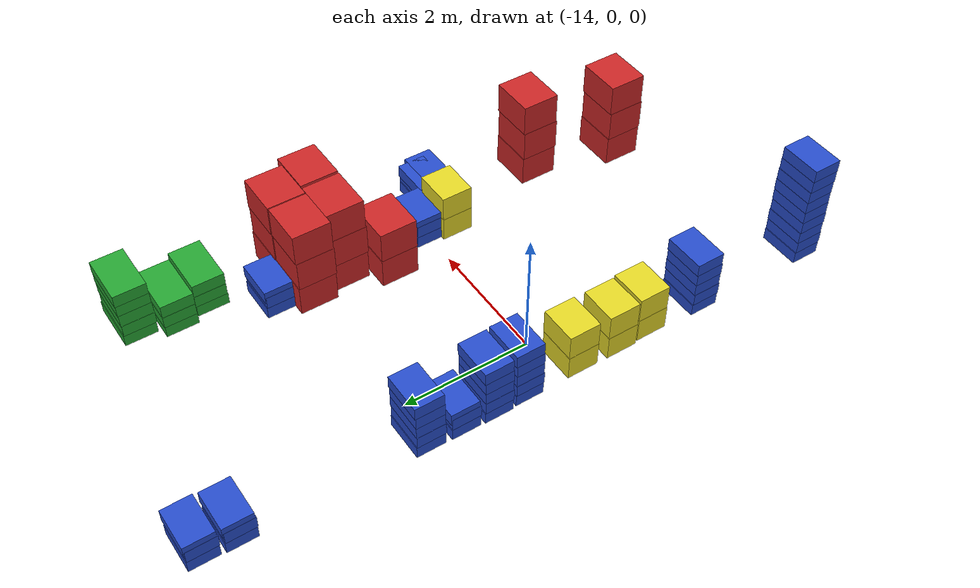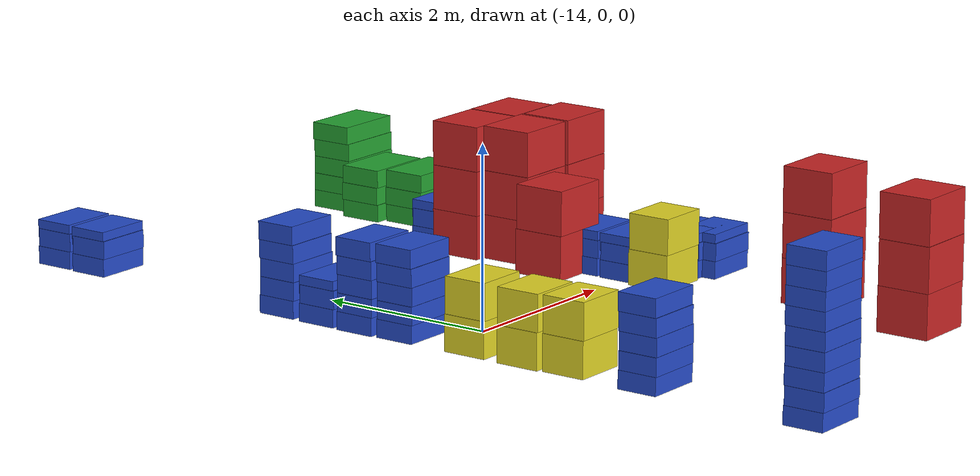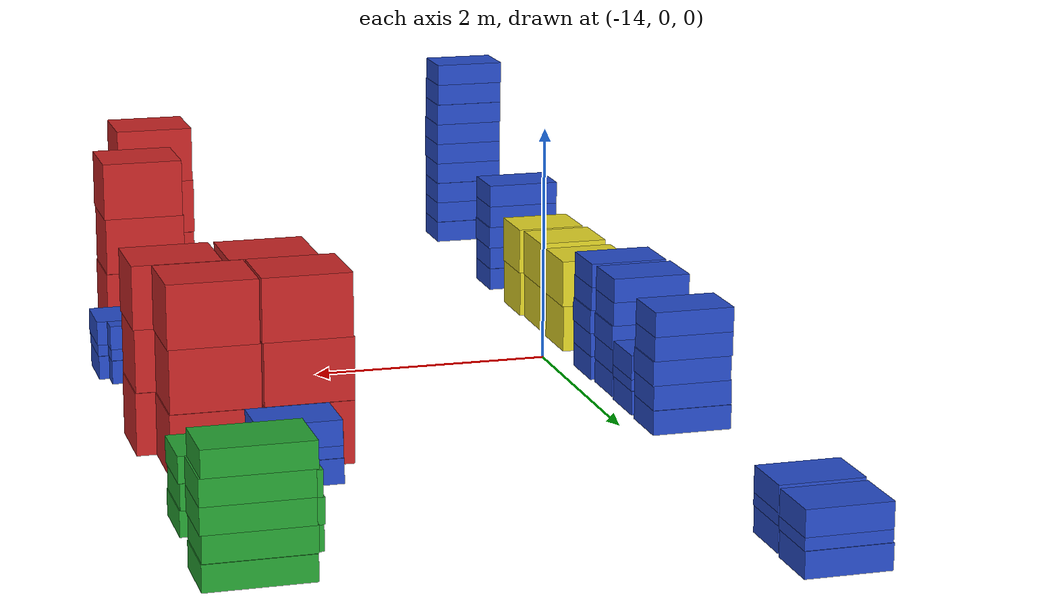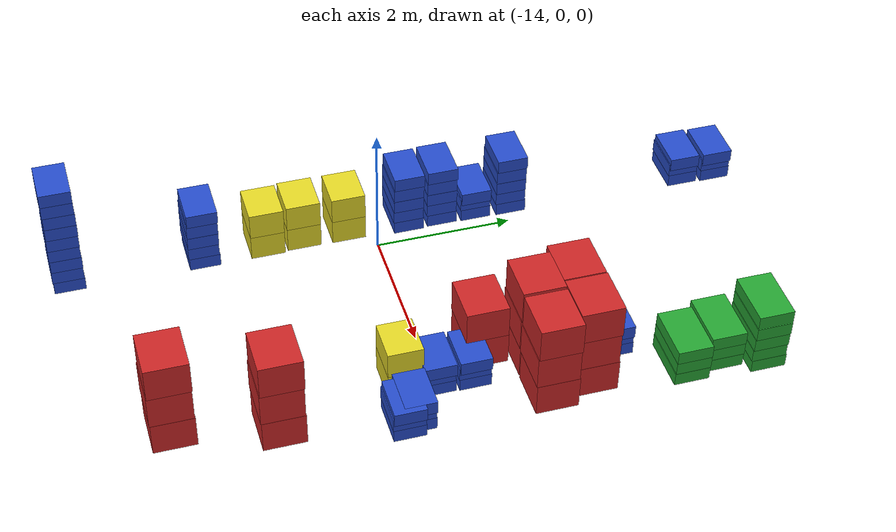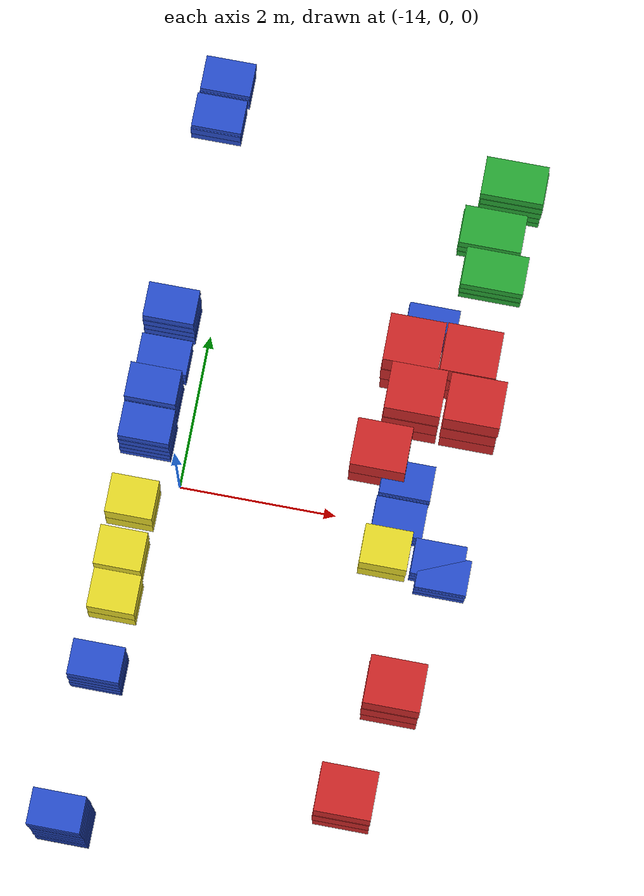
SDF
<sdf version="1.6">
 <world name="default">
  <include><uri>model://sun</uri></include>
  <model name="baggage_B_x9">
   <model name="baggage_B_0">
    <static>1</static>
    <link name="link">
     <collision name="collision"><geometry><box><size>0.65 0.45 0.2</size></box></geometry></collision>
     <visual name="visual">
      <geometry><box><size>0.65 0.45 0.2</size></box></geometry>
      <material>
       <script><uri>file://media/materials/scripts/gazebo.material</uri><name>Gazebo/Blue</name></script>
      </material>
     </visual>
    </link>
    <pose>0 0 0.1 0 -0 0</pose>
   </model>
   <model name="baggage_B_1">
    <static>1</static>
    <link name="link">
     <collision name="collision"><geometry><box><size>0.65 0.45 0.2</size></box></geometry></collision>
     <visual name="visual">
      <geometry><box><size>0.65 0.45 0.2</size></box></geometry>
      <material>
       <script><uri>file://media/materials/scripts/gazebo.material</uri><name>Gazebo/Blue</name></script>
      </material>
     </visual>
    </link>
    <pose>0.001 -0.0095 0.3 0 -0 0</pose>
   </model>
   <model name="baggage_B_2">
    <static>1</static>
    <link name="link">
     <collision name="collision"><geometry><box><size>0.65 0.45 0.2</size></box></geometry></collision>
     <visual name="visual">
      <geometry><box><size>0.65 0.45 0.2</size></box></geometry>
      <material>
       <script><uri>file://media/materials/scripts/gazebo.material</uri><name>Gazebo/Blue</name></script>
      </material>
     </visual>
    </link>
    <pose>0.0028 -0.0029 0.5 0 -0 0</pose>
   </model>
   <model name="baggage_B_3">
    <static>1</static>
    <link name="link">
     <collision name="collision"><geometry><box><size>0.65 0.45 0.2</size></box></geometry></collision>
     <visual name="visual">
      <geometry><box><size>0.65 0.45 0.2</size></box></geometry>
      <material>
       <script><uri>file://media/materials/scripts/gazebo.material</uri><name>Gazebo/Blue</name></script>
      </material>
     </visual>
    </link>
    <pose>-0.0004 -0.0089 0.7 0 -0 0</pose>
   </model>
   <model name="baggage_B_4">
    <static>1</static>
    <link name="link">
     <collision name="collision"><geometry><box><size>0.65 0.45 0.2</size></box></geometry></collision>
     <visual name="visual">
      <geometry><box><size>0.65 0.45 0.2</size></box></geometry>
      <material>
       <script><uri>file://media/materials/scripts/gazebo.material</uri><name>Gazebo/Blue</name></script>
      </material>
     </visual>
    </link>
    <pose>0.0034 -0.0062 0.9 0 -0 0</pose>
   </model>
   <model name="baggage_B_5">
    <static>1</static>
    <link name="link">
     <collision name="collision"><geometry><box><size>0.65 0.45 0.2</size></box></geometry></collision>
     <visual name="visual">
      <geometry><box><size>0.65 0.45 0.2</size></box></geometry>
      <material>
       <script><uri>file://media/materials/scripts/gazebo.material</uri><name>Gazebo/Blue</name></script>
      </material>
     </visual>
    </link>
    <pose>0.0037 -0.0012 1.1 0 -0 0</pose>
   </model>
   <model name="baggage_B_6">
    <static>1</static>
    <link name="link">
     <collision name="collision"><geometry><box><size>0.65 0.45 0.2</size></box></geometry></collision>
     <visual name="visual">
      <geometry><box><size>0.65 0.45 0.2</size></box></geometry>
      <material>
       <script><uri>file://media/materials/scripts/gazebo.material</uri><name>Gazebo/Blue</name></script>
      </material>
     </visual>
    </link>
    <pose>0 -0.0018 1.3 0 -0 0</pose>
   </model>
   <model name="baggage_B_7">
    <static>1</static>
    <link name="link">
     <collision name="collision"><geometry><box><size>0.65 0.45 0.2</size></box></geometry></collision>
     <visual name="visual">
      <geometry><box><size>0.65 0.45 0.2</size></box></geometry>
      <material>
       <script><uri>file://media/materials/scripts/gazebo.material</uri><name>Gazebo/Blue</name></script>
      </material>
     </visual>
    </link>
    <pose>-0.0036 -0.0074 1.5 0 -0 0</pose>
   </model>
   <model name="baggage_B_8">
    <static>1</static>
    <link name="link">
     <collision name="collision"><geometry><box><size>0.65 0.45 0.2</size></box></geometry></collision>
     <visual name="visual">
      <geometry><box><size>0.65 0.45 0.2</size></box></geometry>
      <material>
       <script><uri>file://media/materials/scripts/gazebo.material</uri><name>Gazebo/Blue</name></script>
      </material>
     </visual>
    </link>
    <pose>-0.0068 -0.0081 1.7 0 -0 0</pose>
   </model>
   <pose>-14.554 -4.46821 0 0 -0 0</pose>
  </model>
  <model name="baggage_C_x2_2">
   <model name="baggage_C_0">
    <static>1</static>
    <link name="link">
     <collision name="collision"><geometry><box><size>0.6 0.5 0.4</size></box></geometry></collision>
     <visual name="visual">
      <geometry><box><size>0.6 0.5 0.4</size></box></geometry>
      <material>
       <script><uri>file://media/materials/scripts/gazebo.material</uri><name>Gazebo/Yellow</name></script>
      </material>
     </visual>
    </link>
    <pose>0 0 0.2 0 -0 0</pose>
   </model>
   <model name="baggage_C_1">
    <static>1</static>
    <link name="link">
     <collision name="collision"><geometry><box><size>0.6 0.5 0.4</size></box></geometry></collision>
     <visual name="visual">
      <geometry><box><size>0.6 0.5 0.4</size></box></geometry>
      <material>
       <script><uri>file://media/materials/scripts/gazebo.material</uri><name>Gazebo/Yellow</name></script>
      </material>
     </visual>
    </link>
    <pose>0.0093 -0.002 0.6 0 -0 0</pose>
   </model>
   <pose>-14.5334 -1.04358 0 0 -0 0</pose>
  </model>
  <model name="baggage_C_x2_4">
   <model name="baggage_C_0">
    <static>1</static>
    <link name="link">
     <collision name="collision"><geometry><box><size>0.6 0.5 0.4</size></box></geometry></collision>
     <visual name="visual">
      <geometry><box><size>0.6 0.5 0.4</size></box></geometry>
      <material>
       <script><uri>file://media/materials/scripts/gazebo.material</uri><name>Gazebo/Yellow</name></script>
      </material>
     </visual>
    </link>
    <pose>0 0 0.2 0 -0 0</pose>
   </model>
   <model name="baggage_C_1">
    <static>1</static>
    <link name="link">
     <collision name="collision"><geometry><box><size>0.6 0.5 0.4</size></box></geometry></collision>
     <visual name="visual">
      <geometry><box><size>0.6 0.5 0.4</size></box></geometry>
      <material>
       <script><uri>file://media/materials/scripts/gazebo.material</uri><name>Gazebo/Yellow</name></script>
      </material>
     </visual>
    </link>
    <pose>0.0093 -0.002 0.6 0 -0 0</pose>
   </model>
   <pose>-14.5232 -0.375322 0 0 -0 0</pose>
  </model>
  <model name="baggage_B_x5_2">
   <model name="baggage_B_0">
    <static>1</static>
    <link name="link">
     <collision name="collision"><geometry><box><size>0.65 0.45 0.2</size></box></geometry></collision>
     <visual name="visual">
      <geometry><box><size>0.65 0.45 0.2</size></box></geometry>
      <material>
       <script><uri>file://media/materials/scripts/gazebo.material</uri><name>Gazebo/Blue</name></script>
      </material>
     </visual>
    </link>
    <pose>0 0 0.1 0 -0 0</pose>
   </model>
   <model name="baggage_B_1">
    <static>1</static>
    <link name="link">
     <collision name="collision"><geometry><box><size>0.65 0.45 0.2</size></box></geometry></collision>
     <visual name="visual">
      <geometry><box><size>0.65 0.45 0.2</size></box></geometry>
      <material>
       <script><uri>file://media/materials/scripts/gazebo.material</uri><name>Gazebo/Blue</name></script>
      </material>
     </visual>
    </link>
    <pose>-0.0014 -0.0091 0.3 0 -0 0</pose>
   </model>
   <model name="baggage_B_2">
    <static>1</static>
    <link name="link">
     <collision name="collision"><geometry><box><size>0.65 0.45 0.2</size></box></geometry></collision>
     <visual name="visual">
      <geometry><box><size>0.65 0.45 0.2</size></box></geometry>
      <material>
       <script><uri>file://media/materials/scripts/gazebo.material</uri><name>Gazebo/Blue</name></script>
      </material>
     </visual>
    </link>
    <pose>0.0076 -0.0066 0.5 0 -0 0</pose>
   </model>
   <model name="baggage_B_3">
    <static>1</static>
    <link name="link">
     <collision name="collision"><geometry><box><size>0.65 0.45 0.2</size></box></geometry></collision>
     <visual name="visual">
      <geometry><box><size>0.65 0.45 0.2</size></box></geometry>
      <material>
       <script><uri>file://media/materials/scripts/gazebo.material</uri><name>Gazebo/Blue</name></script>
      </material>
     </visual>
    </link>
    <pose>0 -0.0032 0.7 0 -0 0</pose>
   </model>
   <model name="baggage_B_4">
    <static>1</static>
    <link name="link">
     <collision name="collision"><geometry><box><size>0.65 0.45 0.2</size></box></geometry></collision>
     <visual name="visual">
      <geometry><box><size>0.65 0.45 0.2</size></box></geometry>
      <material>
       <script><uri>file://media/materials/scripts/gazebo.material</uri><name>Gazebo/Blue</name></script>
      </material>
     </visual>
    </link>
    <pose>0.0023 0.0073 0.9 0 -0 0</pose>
   </model>
   <pose>-14.5046 0.525029 0 0 -0 0</pose>
  </model>
  <model name="baggage_B_x5_3">
   <model name="baggage_B_0">
    <static>1</static>
    <link name="link">
     <collision name="collision"><geometry><box><size>0.65 0.45 0.2</size></box></geometry></collision>
     <visual name="visual">
      <geometry><box><size>0.65 0.45 0.2</size></box></geometry>
      <material>
       <script><uri>file://media/materials/scripts/gazebo.material</uri><name>Gazebo/Blue</name></script>
      </material>
     </visual>
    </link>
    <pose>0 0 0.1 0 -0 0</pose>
   </model>
   <model name="baggage_B_1">
    <static>1</static>
    <link name="link">
     <collision name="collision"><geometry><box><size>0.65 0.45 0.2</size></box></geometry></collision>
     <visual name="visual">
      <geometry><box><size>0.65 0.45 0.2</size></box></geometry>
      <material>
       <script><uri>file://media/materials/scripts/gazebo.material</uri><name>Gazebo/Blue</name></script>
      </material>
     </visual>
    </link>
    <pose>-0.0014 -0.0091 0.3 0 -0 0</pose>
   </model>
   <model name="baggage_B_2">
    <static>1</static>
    <link name="link">
     <collision name="collision"><geometry><box><size>0.65 0.45 0.2</size></box></geometry></collision>
     <visual name="visual">
      <geometry><box><size>0.65 0.45 0.2</size></box></geometry>
      <material>
       <script><uri>file://media/materials/scripts/gazebo.material</uri><name>Gazebo/Blue</name></script>
      </material>
     </visual>
    </link>
    <pose>0.0076 -0.0066 0.5 0 -0 0</pose>
   </model>
   <model name="baggage_B_3">
    <static>1</static>
    <link name="link">
     <collision name="collision"><geometry><box><size>0.65 0.45 0.2</size></box></geometry></collision>
     <visual name="visual">
      <geometry><box><size>0.65 0.45 0.2</size></box></geometry>
      <material>
       <script><uri>file://media/materials/scripts/gazebo.material</uri><name>Gazebo/Blue</name></script>
      </material>
     </visual>
    </link>
    <pose>0 -0.0032 0.7 0 -0 0</pose>
   </model>
   <model name="baggage_B_4">
    <static>1</static>
    <link name="link">
     <collision name="collision"><geometry><box><size>0.65 0.45 0.2</size></box></geometry></collision>
     <visual name="visual">
      <geometry><box><size>0.65 0.45 0.2</size></box></geometry>
      <material>
       <script><uri>file://media/materials/scripts/gazebo.material</uri><name>Gazebo/Blue</name></script>
      </material>
     </visual>
    </link>
    <pose>0.0023 0.0073 0.9 0 -0 0</pose>
   </model>
   <pose>-14.5224 1.03384 0 0 -0 0</pose>
  </model>
  <model name="baggage_B_x3_2">
   <model name="baggage_B_0">
    <static>1</static>
    <link name="link">
     <collision name="collision"><geometry><box><size>0.65 0.45 0.2</size></box></geometry></collision>
     <visual name="visual">
      <geometry><box><size>0.65 0.45 0.2</size></box></geometry>
      <material>
       <script><uri>file://media/materials/scripts/gazebo.material</uri><name>Gazebo/Blue</name></script>
      </material>
     </visual>
    </link>
    <pose>0 0 0.1 0 -0 0</pose>
   </model>
   <model name="baggage_B_1">
    <static>1</static>
    <link name="link">
     <collision name="collision"><geometry><box><size>0.65 0.45 0.2</size></box></geometry></collision>
     <visual name="visual">
      <geometry><box><size>0.65 0.45 0.2</size></box></geometry>
      <material>
       <script><uri>file://media/materials/scripts/gazebo.material</uri><name>Gazebo/Blue</name></script>
      </material>
     </visual>
    </link>
    <pose>0.0028 -0.0086 0.3 0 -0 0</pose>
   </model>
   <model name="baggage_B_2">
    <static>1</static>
    <link name="link">
     <collision name="collision"><geometry><box><size>0.65 0.45 0.2</size></box></geometry></collision>
     <visual name="visual">
      <geometry><box><size>0.65 0.45 0.2</size></box></geometry>
      <material>
       <script><uri>file://media/materials/scripts/gazebo.material</uri><name>Gazebo/Blue</name></script>
      </material>
     </visual>
    </link>
    <pose>0.0092 0.006 0.4 0 -0 0</pose>
   </model>
   <pose>-14.5084 1.54815 0 0 -0 0</pose>
  </model>
  <model name="baggage_B_x5_4">
   <model name="baggage_B_0">
    <static>1</static>
    <link name="link">
     <collision name="collision"><geometry><box><size>0.65 0.45 0.2</size></box></geometry></collision>
     <visual name="visual">
      <geometry><box><size>0.65 0.45 0.2</size></box></geometry>
      <material>
       <script><uri>file://media/materials/scripts/gazebo.material</uri><name>Gazebo/Blue</name></script>
      </material>
     </visual>
    </link>
    <pose>0 0 0.1 0 -0 0</pose>
   </model>
   <model name="baggage_B_1">
    <static>1</static>
    <link name="link">
     <collision name="collision"><geometry><box><size>0.65 0.45 0.2</size></box></geometry></collision>
     <visual name="visual">
      <geometry><box><size>0.65 0.45 0.2</size></box></geometry>
      <material>
       <script><uri>file://media/materials/scripts/gazebo.material</uri><name>Gazebo/Blue</name></script>
      </material>
     </visual>
    </link>
    <pose>-0.0014 -0.0091 0.3 0 -0 0</pose>
   </model>
   <model name="baggage_B_2">
    <static>1</static>
    <link name="link">
     <collision name="collision"><geometry><box><size>0.65 0.45 0.2</size></box></geometry></collision>
     <visual name="visual">
      <geometry><box><size>0.65 0.45 0.2</size></box></geometry>
      <material>
       <script><uri>file://media/materials/scripts/gazebo.material</uri><name>Gazebo/Blue</name></script>
      </material>
     </visual>
    </link>
    <pose>0.0076 -0.0066 0.5 0 -0 0</pose>
   </model>
   <model name="baggage_B_3">
    <static>1</static>
    <link name="link">
     <collision name="collision"><geometry><box><size>0.65 0.45 0.2</size></box></geometry></collision>
     <visual name="visual">
      <geometry><box><size>0.65 0.45 0.2</size></box></geometry>
      <material>
       <script><uri>file://media/materials/scripts/gazebo.material</uri><name>Gazebo/Blue</name></script>
      </material>
     </visual>
    </link>
    <pose>0 -0.0032 0.7 0 -0 0</pose>
   </model>
   <model name="baggage_B_4">
    <static>1</static>
    <link name="link">
     <collision name="collision"><geometry><box><size>0.65 0.45 0.2</size></box></geometry></collision>
     <visual name="visual">
      <geometry><box><size>0.65 0.45 0.2</size></box></geometry>
      <material>
       <script><uri>file://media/materials/scripts/gazebo.material</uri><name>Gazebo/Blue</name></script>
      </material>
     </visual>
    </link>
    <pose>0.0023 0.0073 0.9 0 -0 0</pose>
   </model>
   <pose>-14.4977 2.09001 0 0 -0 0</pose>
  </model>
  <model name="baggage_B_x5_5">
   <model name="baggage_B_0">
    <static>1</static>
    <link name="link">
     <collision name="collision"><geometry><box><size>0.65 0.45 0.2</size></box></geometry></collision>
     <visual name="visual">
      <geometry><box><size>0.65 0.45 0.2</size></box></geometry>
      <material>
       <script><uri>file://media/materials/scripts/gazebo.material</uri><name>Gazebo/Blue</name></script>
      </material>
     </visual>
    </link>
    <pose>0 0 0.1 0 -0 0</pose>
   </model>
   <model name="baggage_B_1">
    <static>1</static>
    <link name="link">
     <collision name="collision"><geometry><box><size>0.65 0.45 0.2</size></box></geometry></collision>
     <visual name="visual">
      <geometry><box><size>0.65 0.45 0.2</size></box></geometry>
      <material>
       <script><uri>file://media/materials/scripts/gazebo.material</uri><name>Gazebo/Blue</name></script>
      </material>
     </visual>
    </link>
    <pose>-0.0014 -0.0091 0.3 0 -0 0</pose>
   </model>
   <model name="baggage_B_2">
    <static>1</static>
    <link name="link">
     <collision name="collision"><geometry><box><size>0.65 0.45 0.2</size></box></geometry></collision>
     <visual name="visual">
      <geometry><box><size>0.65 0.45 0.2</size></box></geometry>
      <material>
       <script><uri>file://media/materials/scripts/gazebo.material</uri><name>Gazebo/Blue</name></script>
      </material>
     </visual>
    </link>
    <pose>0.0076 -0.0066 0.5 0 -0 0</pose>
   </model>
   <model name="baggage_B_3">
    <static>1</static>
    <link name="link">
     <collision name="collision"><geometry><box><size>0.65 0.45 0.2</size></box></geometry></collision>
     <visual name="visual">
      <geometry><box><size>0.65 0.45 0.2</size></box></geometry>
      <material>
       <script><uri>file://media/materials/scripts/gazebo.material</uri><name>Gazebo/Blue</name></script>
      </material>
     </visual>
    </link>
    <pose>0 -0.0032 0.7 0 -0 0</pose>
   </model>
   <model name="baggage_B_4">
    <static>1</static>
    <link name="link">
     <collision name="collision"><geometry><box><size>0.65 0.45 0.2</size></box></geometry></collision>
     <visual name="visual">
      <geometry><box><size>0.65 0.45 0.2</size></box></geometry>
      <material>
       <script><uri>file://media/materials/scripts/gazebo.material</uri><name>Gazebo/Blue</name></script>
      </material>
     </visual>
    </link>
    <pose>0.0023 0.0073 0.9 0 -0 0</pose>
   </model>
   <pose>-14.5261 -2.51938 0 0 -0 0</pose>
  </model>
  <model name="baggage_C_x2_6">
   <model name="baggage_C_0">
    <static>1</static>
    <link name="link">
     <collision name="collision"><geometry><box><size>0.6 0.5 0.4</size></box></geometry></collision>
     <visual name="visual">
      <geometry><box><size>0.6 0.5 0.4</size></box></geometry>
      <material>
       <script><uri>file://media/materials/scripts/gazebo.material</uri><name>Gazebo/Yellow</name></script>
      </material>
     </visual>
    </link>
    <pose>0 0 0.2 0 -0 0</pose>
   </model>
   <model name="baggage_C_1">
    <static>1</static>
    <link name="link">
     <collision name="collision"><geometry><box><size>0.6 0.5 0.4</size></box></geometry></collision>
     <visual name="visual">
      <geometry><box><size>0.6 0.5 0.4</size></box></geometry>
      <material>
       <script><uri>file://media/materials/scripts/gazebo.material</uri><name>Gazebo/Yellow</name></script>
      </material>
     </visual>
    </link>
    <pose>0.0093 -0.002 0.6 0 -0 0</pose>
   </model>
   <pose>-14.5053 -1.58962 0 0 -0 0</pose>
  </model>
  <model name="baggage_B_x3_4">
   <model name="baggage_B_0">
    <static>1</static>
    <link name="link">
     <collision name="collision"><geometry><box><size>0.65 0.45 0.2</size></box></geometry></collision>
     <visual name="visual">
      <geometry><box><size>0.65 0.45 0.2</size></box></geometry>
      <material>
       <script><uri>file://media/materials/scripts/gazebo.material</uri><name>Gazebo/Blue</name></script>
      </material>
     </visual>
    </link>
    <pose>0 0 0.1 0 -0 0</pose>
   </model>
   <model name="baggage_B_1">
    <static>1</static>
    <link name="link">
     <collision name="collision"><geometry><box><size>0.65 0.45 0.2</size></box></geometry></collision>
     <visual name="visual">
      <geometry><box><size>0.65 0.45 0.2</size></box></geometry>
      <material>
       <script><uri>file://media/materials/scripts/gazebo.material</uri><name>Gazebo/Blue</name></script>
      </material>
     </visual>
    </link>
    <pose>0.0028 -0.0086 0.3 0 -0 0</pose>
   </model>
   <model name="baggage_B_2">
    <static>1</static>
    <link name="link">
     <collision name="collision"><geometry><box><size>0.65 0.45 0.2</size></box></geometry></collision>
     <visual name="visual">
      <geometry><box><size>0.65 0.45 0.2</size></box></geometry>
      <material>
       <script><uri>file://media/materials/scripts/gazebo.material</uri><name>Gazebo/Blue</name></script>
      </material>
     </visual>
    </link>
    <pose>0.0092 0.006 0.4 0 -0 0</pose>
   </model>
   <pose>-14.4313 4.80251 0 0 -0 0</pose>
  </model>
  <model name="baggage_B_x3_7">
   <model name="baggage_B_0">
    <static>1</static>
    <link name="link">
     <collision name="collision"><geometry><box><size>0.65 0.45 0.2</size></box></geometry></collision>
     <visual name="visual">
      <geometry><box><size>0.65 0.45 0.2</size></box></geometry>
      <material>
       <script><uri>file://media/materials/scripts/gazebo.material</uri><name>Gazebo/Blue</name></script>
      </material>
     </visual>
    </link>
    <pose>0 0 0.1 0 -0 0</pose>
   </model>
   <model name="baggage_B_1">
    <static>1</static>
    <link name="link">
     <collision name="collision"><geometry><box><size>0.65 0.45 0.2</size></box></geometry></collision>
     <visual name="visual">
      <geometry><box><size>0.65 0.45 0.2</size></box></geometry>
      <material>
       <script><uri>file://media/materials/scripts/gazebo.material</uri><name>Gazebo/Blue</name></script>
      </material>
     </visual>
    </link>
    <pose>0.0028 -0.0086 0.3 0 -0 0</pose>
   </model>
   <model name="baggage_B_2">
    <static>1</static>
    <link name="link">
     <collision name="collision"><geometry><box><size>0.65 0.45 0.2</size></box></geometry></collision>
     <visual name="visual">
      <geometry><box><size>0.65 0.45 0.2</size></box></geometry>
      <material>
       <script><uri>file://media/materials/scripts/gazebo.material</uri><name>Gazebo/Blue</name></script>
      </material>
     </visual>
    </link>
    <pose>0.0092 0.006 0.4 0 -0 0</pose>
   </model>
   <pose>-14.4126 5.3135 0 0 -0 0</pose>
  </model>
  <model name="baggage_A_x3_14">
   <model name="baggage_A_0">
    <static>1</static>
    <link name="link">
     <collision name="collision"><geometry><box><size>0.7 0.6 0.5</size></box></geometry></collision>
     <visual name="visual">
      <geometry><box><size>0.7 0.6 0.5</size></box></geometry>
      <material>
       <script><uri>file://media/materials/scripts/gazebo.material</uri><name>Gazebo/Red</name></script>
      </material>
     </visual>
    </link>
    <pose>0 0 0.25 0 -0 0</pose>
   </model>
   <model name="baggage_A_1">
    <static>1</static>
    <link name="link">
     <collision name="collision"><geometry><box><size>0.7 0.6 0.5</size></box></geometry></collision>
     <visual name="visual">
      <geometry><box><size>0.7 0.6 0.5</size></box></geometry>
      <material>
       <script><uri>file://media/materials/scripts/gazebo.material</uri><name>Gazebo/Red</name></script>
      </material>
     </visual>
    </link>
    <pose>-0.006 -0.0077 0.75 0 -0 0</pose>
   </model>
   <model name="baggage_A_2">
    <static>1</static>
    <link name="link">
     <collision name="collision"><geometry><box><size>0.7 0.6 0.5</size></box></geometry></collision>
     <visual name="visual">
      <geometry><box><size>0.7 0.6 0.5</size></box></geometry>
      <material>
       <script><uri>file://media/materials/scripts/gazebo.material</uri><name>Gazebo/Red</name></script>
      </material>
     </visual>
    </link>
    <pose>0.0045 0.0005 1.25 0 -0 0</pose>
   </model>
   <pose>-11.2173 -3.57429 0 0 -0 0</pose>
  </model>
  <model name="baggage_A_x3_17">
   <model name="baggage_A_0">
    <static>1</static>
    <link name="link">
     <collision name="collision"><geometry><box><size>0.7 0.6 0.5</size></box></geometry></collision>
     <visual name="visual">
      <geometry><box><size>0.7 0.6 0.5</size></box></geometry>
      <material>
       <script><uri>file://media/materials/scripts/gazebo.material</uri><name>Gazebo/Red</name></script>
      </material>
     </visual>
    </link>
    <pose>0 0 0.25 0 -0 0</pose>
   </model>
   <model name="baggage_A_1">
    <static>1</static>
    <link name="link">
     <collision name="collision"><geometry><box><size>0.7 0.6 0.5</size></box></geometry></collision>
     <visual name="visual">
      <geometry><box><size>0.7 0.6 0.5</size></box></geometry>
      <material>
       <script><uri>file://media/materials/scripts/gazebo.material</uri><name>Gazebo/Red</name></script>
      </material>
     </visual>
    </link>
    <pose>-0.006 -0.0077 0.75 0 -0 0</pose>
   </model>
   <model name="baggage_A_2">
    <static>1</static>
    <link name="link">
     <collision name="collision"><geometry><box><size>0.7 0.6 0.5</size></box></geometry></collision>
     <visual name="visual">
      <geometry><box><size>0.7 0.6 0.5</size></box></geometry>
      <material>
       <script><uri>file://media/materials/scripts/gazebo.material</uri><name>Gazebo/Red</name></script>
      </material>
     </visual>
    </link>
    <pose>0.0045 0.0005 1.25 0 -0 0</pose>
   </model>
   <pose>-10.8736 -2.1815 0 0 -0 0</pose>
  </model>
  <model name="baggage_C_x2_27">
   <model name="baggage_C_0">
    <static>1</static>
    <link name="link">
     <collision name="collision"><geometry><box><size>0.6 0.5 0.4</size></box></geometry></collision>
     <visual name="visual">
      <geometry><box><size>0.6 0.5 0.4</size></box></geometry>
      <material>
       <script><uri>file://media/materials/scripts/gazebo.material</uri><name>Gazebo/Yellow</name></script>
      </material>
     </visual>
    </link>
    <pose>0 0 0.2 0 -0 0</pose>
   </model>
   <model name="baggage_C_1">
    <static>1</static>
    <link name="link">
     <collision name="collision"><geometry><box><size>0.6 0.5 0.4</size></box></geometry></collision>
     <visual name="visual">
      <geometry><box><size>0.6 0.5 0.4</size></box></geometry>
      <material>
       <script><uri>file://media/materials/scripts/gazebo.material</uri><name>Gazebo/Yellow</name></script>
      </material>
     </visual>
    </link>
    <pose>0.0093 -0.002 0.6 0 -0 0</pose>
   </model>
   <pose>-11.299 -0.417062 0 0 -0 0</pose>
  </model>
  <model name="baggage_B_x3_21">
   <model name="baggage_B_0">
    <static>1</static>
    <link name="link">
     <collision name="collision"><geometry><box><size>0.65 0.45 0.2</size></box></geometry></collision>
     <visual name="visual">
      <geometry><box><size>0.65 0.45 0.2</size></box></geometry>
      <material>
       <script><uri>file://media/materials/scripts/gazebo.material</uri><name>Gazebo/Blue</name></script>
      </material>
     </visual>
    </link>
    <pose>0 0 0.1 0 -0 0</pose>
   </model>
   <model name="baggage_B_1">
    <static>1</static>
    <link name="link">
     <collision name="collision"><geometry><box><size>0.65 0.45 0.2</size></box></geometry></collision>
     <visual name="visual">
      <geometry><box><size>0.65 0.45 0.2</size></box></geometry>
      <material>
       <script><uri>file://media/materials/scripts/gazebo.material</uri><name>Gazebo/Blue</name></script>
      </material>
     </visual>
    </link>
    <pose>0.0028 -0.0086 0.3 0 -0 0</pose>
   </model>
   <model name="baggage_B_2">
    <static>1</static>
    <link name="link">
     <collision name="collision"><geometry><box><size>0.65 0.45 0.2</size></box></geometry></collision>
     <visual name="visual">
      <geometry><box><size>0.65 0.45 0.2</size></box></geometry>
      <material>
       <script><uri>file://media/materials/scripts/gazebo.material</uri><name>Gazebo/Blue</name></script>
      </material>
     </visual>
    </link>
    <pose>0.0092 0.006 0.4 0 -0 0</pose>
   </model>
   <pose>-11.2074 0.031881 0 0 -0 0</pose>
  </model>
  <model name="baggage_B_x3_22">
   <model name="baggage_B_0">
    <static>1</static>
    <link name="link">
     <collision name="collision"><geometry><box><size>0.65 0.45 0.2</size></box></geometry></collision>
     <visual name="visual">
      <geometry><box><size>0.65 0.45 0.2</size></box></geometry>
      <material>
       <script><uri>file://media/materials/scripts/gazebo.material</uri><name>Gazebo/Blue</name></script>
      </material>
     </visual>
    </link>
    <pose>0 0 0.1 0 -0 0</pose>
   </model>
   <model name="baggage_B_1">
    <static>1</static>
    <link name="link">
     <collision name="collision"><geometry><box><size>0.65 0.45 0.2</size></box></geometry></collision>
     <visual name="visual">
      <geometry><box><size>0.65 0.45 0.2</size></box></geometry>
      <material>
       <script><uri>file://media/materials/scripts/gazebo.material</uri><name>Gazebo/Blue</name></script>
      </material>
     </visual>
    </link>
    <pose>0.0028 -0.0086 0.3 0 -0 0</pose>
   </model>
   <model name="baggage_B_2">
    <static>1</static>
    <link name="link">
     <collision name="collision"><geometry><box><size>0.65 0.45 0.2</size></box></geometry></collision>
     <visual name="visual">
      <geometry><box><size>0.65 0.45 0.2</size></box></geometry>
      <material>
       <script><uri>file://media/materials/scripts/gazebo.material</uri><name>Gazebo/Blue</name></script>
      </material>
     </visual>
    </link>
    <pose>0.0092 0.006 0.4 0 -0 0</pose>
   </model>
   <pose>-11.1946 0.525631 0 0 -0 0</pose>
  </model>
  <model name="baggage_B_x3_23">
   <model name="baggage_B_0">
    <static>1</static>
    <link name="link">
     <collision name="collision"><geometry><box><size>0.65 0.45 0.2</size></box></geometry></collision>
     <visual name="visual">
      <geometry><box><size>0.65 0.45 0.2</size></box></geometry>
      <material>
       <script><uri>file://media/materials/scripts/gazebo.material</uri><name>Gazebo/Blue</name></script>
      </material>
     </visual>
    </link>
    <pose>0 0 0.1 0 -0 0</pose>
   </model>
   <model name="baggage_B_1">
    <static>1</static>
    <link name="link">
     <collision name="collision"><geometry><box><size>0.65 0.45 0.2</size></box></geometry></collision>
     <visual name="visual">
      <geometry><box><size>0.65 0.45 0.2</size></box></geometry>
      <material>
       <script><uri>file://media/materials/scripts/gazebo.material</uri><name>Gazebo/Blue</name></script>
      </material>
     </visual>
    </link>
    <pose>0.0028 -0.0086 0.3 0 -0 0</pose>
   </model>
   <model name="baggage_B_2">
    <static>1</static>
    <link name="link">
     <collision name="collision"><geometry><box><size>0.65 0.45 0.2</size></box></geometry></collision>
     <visual name="visual">
      <geometry><box><size>0.65 0.45 0.2</size></box></geometry>
      <material>
       <script><uri>file://media/materials/scripts/gazebo.material</uri><name>Gazebo/Blue</name></script>
      </material>
     </visual>
    </link>
    <pose>0.0092 0.006 0.4 0 -0 0</pose>
   </model>
   <pose>-10.6261 -0.407751 0 0 -0 0</pose>
  </model>
  <model name="baggage_B_x3_24">
   <model name="baggage_B_0">
    <static>1</static>
    <link name="link">
     <collision name="collision"><geometry><box><size>0.65 0.45 0.2</size></box></geometry></collision>
     <visual name="visual">
      <geometry><box><size>0.65 0.45 0.2</size></box></geometry>
      <material>
       <script><uri>file://media/materials/scripts/gazebo.material</uri><name>Gazebo/Blue</name></script>
      </material>
     </visual>
    </link>
    <pose>0 0 0.1 0 -0 0</pose>
   </model>
   <model name="baggage_B_1">
    <static>1</static>
    <link name="link">
     <collision name="collision"><geometry><box><size>0.65 0.45 0.2</size></box></geometry></collision>
     <visual name="visual">
      <geometry><box><size>0.65 0.45 0.2</size></box></geometry>
      <material>
       <script><uri>file://media/materials/scripts/gazebo.material</uri><name>Gazebo/Blue</name></script>
      </material>
     </visual>
    </link>
    <pose>0.0028 -0.0086 0.3 0 -0 0</pose>
   </model>
   <model name="baggage_B_2">
    <static>1</static>
    <link name="link">
     <collision name="collision"><geometry><box><size>0.65 0.45 0.2</size></box></geometry></collision>
     <visual name="visual">
      <geometry><box><size>0.65 0.45 0.2</size></box></geometry>
      <material>
       <script><uri>file://media/materials/scripts/gazebo.material</uri><name>Gazebo/Blue</name></script>
      </material>
     </visual>
    </link>
    <pose>0.0092 0.006 0.4 0 -0 0</pose>
   </model>
   <pose>-10.541 -0.572061 0 0 -0 0</pose>
  </model>
  <model name="baggage_A_x2_20">
   <model name="baggage_A_0">
    <static>1</static>
    <link name="link">
     <collision name="collision"><geometry><box><size>0.7 0.6 0.5</size></box></geometry></collision>
     <visual name="visual">
      <geometry><box><size>0.7 0.6 0.5</size></box></geometry>
      <material>
       <script><uri>file://media/materials/scripts/gazebo.material</uri><name>Gazebo/Red</name></script>
      </material>
     </visual>
    </link>
    <pose>0 0 0.25 0 -0 0</pose>
   </model>
   <model name="baggage_A_1">
    <static>1</static>
    <link name="link">
     <collision name="collision"><geometry><box><size>0.7 0.6 0.5</size></box></geometry></collision>
     <visual name="visual">
      <geometry><box><size>0.7 0.6 0.5</size></box></geometry>
      <material>
       <script><uri>file://media/materials/scripts/gazebo.material</uri><name>Gazebo/Red</name></script>
      </material>
     </visual>
    </link>
    <pose>0.0063 -0.0062 0.75 0 -0 0</pose>
   </model>
   <pose>-11.5819 0.79868 0 0 -0 0</pose>
  </model>
  <model name="baggage_A_x3_22">
   <model name="baggage_A_0">
    <static>1</static>
    <link name="link">
     <collision name="collision"><geometry><box><size>0.7 0.6 0.5</size></box></geometry></collision>
     <visual name="visual">
      <geometry><box><size>0.7 0.6 0.5</size></box></geometry>
      <material>
       <script><uri>file://media/materials/scripts/gazebo.material</uri><name>Gazebo/Red</name></script>
      </material>
     </visual>
    </link>
    <pose>0 0 0.25 0 -0 0</pose>
   </model>
   <model name="baggage_A_1">
    <static>1</static>
    <link name="link">
     <collision name="collision"><geometry><box><size>0.7 0.6 0.5</size></box></geometry></collision>
     <visual name="visual">
      <geometry><box><size>0.7 0.6 0.5</size></box></geometry>
      <material>
       <script><uri>file://media/materials/scripts/gazebo.material</uri><name>Gazebo/Red</name></script>
      </material>
     </visual>
    </link>
    <pose>-0.006 -0.0077 0.75 0 -0 0</pose>
   </model>
   <model name="baggage_A_2">
    <static>1</static>
    <link name="link">
     <collision name="collision"><geometry><box><size>0.7 0.6 0.5</size></box></geometry></collision>
     <visual name="visual">
      <geometry><box><size>0.7 0.6 0.5</size></box></geometry>
      <material>
       <script><uri>file://media/materials/scripts/gazebo.material</uri><name>Gazebo/Red</name></script>
      </material>
     </visual>
    </link>
    <pose>0.0045 0.0005 1.25 0 -0 0</pose>
   </model>
   <pose>-11.2834 1.4596 0 0 -0 0</pose>
  </model>
  <model name="baggage_A_x3_23">
   <model name="baggage_A_0">
    <static>1</static>
    <link name="link">
     <collision name="collision"><geometry><box><size>0.7 0.6 0.5</size></box></geometry></collision>
     <visual name="visual">
      <geometry><box><size>0.7 0.6 0.5</size></box></geometry>
      <material>
       <script><uri>file://media/materials/scripts/gazebo.material</uri><name>Gazebo/Red</name></script>
      </material>
     </visual>
    </link>
    <pose>0 0 0.25 0 -0 0</pose>
   </model>
   <model name="baggage_A_1">
    <static>1</static>
    <link name="link">
     <collision name="collision"><geometry><box><size>0.7 0.6 0.5</size></box></geometry></collision>
     <visual name="visual">
      <geometry><box><size>0.7 0.6 0.5</size></box></geometry>
      <material>
       <script><uri>file://media/materials/scripts/gazebo.material</uri><name>Gazebo/Red</name></script>
      </material>
     </visual>
    </link>
    <pose>-0.006 -0.0077 0.75 0 -0 0</pose>
   </model>
   <model name="baggage_A_2">
    <static>1</static>
    <link name="link">
     <collision name="collision"><geometry><box><size>0.7 0.6 0.5</size></box></geometry></collision>
     <visual name="visual">
      <geometry><box><size>0.7 0.6 0.5</size></box></geometry>
      <material>
       <script><uri>file://media/materials/scripts/gazebo.material</uri><name>Gazebo/Red</name></script>
      </material>
     </visual>
    </link>
    <pose>0.0045 0.0005 1.25 0 -0 0</pose>
   </model>
   <pose>-10.5375 1.45338 0 0 -0 0</pose>
  </model>
  <model name="baggage_A_x3_24">
   <model name="baggage_A_0">
    <static>1</static>
    <link name="link">
     <collision name="collision"><geometry><box><size>0.7 0.6 0.5</size></box></geometry></collision>
     <visual name="visual">
      <geometry><box><size>0.7 0.6 0.5</size></box></geometry>
      <material>
       <script><uri>file://media/materials/scripts/gazebo.material</uri><name>Gazebo/Red</name></script>
      </material>
     </visual>
    </link>
    <pose>0 0 0.25 0 -0 0</pose>
   </model>
   <model name="baggage_A_1">
    <static>1</static>
    <link name="link">
     <collision name="collision"><geometry><box><size>0.7 0.6 0.5</size></box></geometry></collision>
     <visual name="visual">
      <geometry><box><size>0.7 0.6 0.5</size></box></geometry>
      <material>
       <script><uri>file://media/materials/scripts/gazebo.material</uri><name>Gazebo/Red</name></script>
      </material>
     </visual>
    </link>
    <pose>-0.006 -0.0077 0.75 0 -0 0</pose>
   </model>
   <model name="baggage_A_2">
    <static>1</static>
    <link name="link">
     <collision name="collision"><geometry><box><size>0.7 0.6 0.5</size></box></geometry></collision>
     <visual name="visual">
      <geometry><box><size>0.7 0.6 0.5</size></box></geometry>
      <material>
       <script><uri>file://media/materials/scripts/gazebo.material</uri><name>Gazebo/Red</name></script>
      </material>
     </visual>
    </link>
    <pose>0.0045 0.0005 1.25 0 -0 0</pose>
   </model>
   <pose>-11.4101 2.05776 0 0 -0 0</pose>
  </model>
  <model name="baggage_A_x3_25">
   <model name="baggage_A_0">
    <static>1</static>
    <link name="link">
     <collision name="collision"><geometry><box><size>0.7 0.6 0.5</size></box></geometry></collision>
     <visual name="visual">
      <geometry><box><size>0.7 0.6 0.5</size></box></geometry>
      <material>
       <script><uri>file://media/materials/scripts/gazebo.material</uri><name>Gazebo/Red</name></script>
      </material>
     </visual>
    </link>
    <pose>0 0 0.25 0 -0 0</pose>
   </model>
   <model name="baggage_A_1">
    <static>1</static>
    <link name="link">
     <collision name="collision"><geometry><box><size>0.7 0.6 0.5</size></box></geometry></collision>
     <visual name="visual">
      <geometry><box><size>0.7 0.6 0.5</size></box></geometry>
      <material>
       <script><uri>file://media/materials/scripts/gazebo.material</uri><name>Gazebo/Red</name></script>
      </material>
     </visual>
    </link>
    <pose>-0.006 -0.0077 0.75 0 -0 0</pose>
   </model>
   <model name="baggage_A_2">
    <static>1</static>
    <link name="link">
     <collision name="collision"><geometry><box><size>0.7 0.6 0.5</size></box></geometry></collision>
     <visual name="visual">
      <geometry><box><size>0.7 0.6 0.5</size></box></geometry>
      <material>
       <script><uri>file://media/materials/scripts/gazebo.material</uri><name>Gazebo/Red</name></script>
      </material>
     </visual>
    </link>
    <pose>0.0045 0.0005 1.25 0 -0 0</pose>
   </model>
   <pose>-10.6922 2.06381 0 0 -0 0</pose>
  </model>
  <model name="baggage_B_x3_25">
   <model name="baggage_B_0">
    <static>1</static>
    <link name="link">
     <collision name="collision"><geometry><box><size>0.65 0.45 0.2</size></box></geometry></collision>
     <visual name="visual">
      <geometry><box><size>0.65 0.45 0.2</size></box></geometry>
      <material>
       <script><uri>file://media/materials/scripts/gazebo.material</uri><name>Gazebo/Blue</name></script>
      </material>
     </visual>
    </link>
    <pose>0 0 0.1 0 -0 0</pose>
   </model>
   <model name="baggage_B_1">
    <static>1</static>
    <link name="link">
     <collision name="collision"><geometry><box><size>0.65 0.45 0.2</size></box></geometry></collision>
     <visual name="visual">
      <geometry><box><size>0.65 0.45 0.2</size></box></geometry>
      <material>
       <script><uri>file://media/materials/scripts/gazebo.material</uri><name>Gazebo/Blue</name></script>
      </material>
     </visual>
    </link>
    <pose>0.0028 -0.0086 0.3 0 -0 0</pose>
   </model>
   <model name="baggage_B_2">
    <static>1</static>
    <link name="link">
     <collision name="collision"><geometry><box><size>0.65 0.45 0.2</size></box></geometry></collision>
     <visual name="visual">
      <geometry><box><size>0.65 0.45 0.2</size></box></geometry>
      <material>
       <script><uri>file://media/materials/scripts/gazebo.material</uri><name>Gazebo/Blue</name></script>
      </material>
     </visual>
    </link>
    <pose>0.0092 0.006 0.4 0 -0 0</pose>
   </model>
   <pose>-11.247 2.57319 0 0 -0 0</pose>
  </model>
  <model name="baggage_D_x3_25">
   <model name="baggage_D_0">
    <static>1</static>
    <link name="link">
     <collision name="collision"><geometry><box><size>0.8 0.5 0.2</size></box></geometry></collision>
     <visual name="visual">
      <geometry><box><size>0.8 0.5 0.2</size></box></geometry>
      <material>
       <script><uri>file://media/materials/scripts/gazebo.material</uri><name>Gazebo/Green</name></script>
      </material>
     </visual>
    </link>
    <pose>0 0 0.1 0 -0 0</pose>
   </model>
   <model name="baggage_D_1">
    <static>1</static>
    <link name="link">
     <collision name="collision"><geometry><box><size>0.8 0.5 0.2</size></box></geometry></collision>
     <visual name="visual">
      <geometry><box><size>0.8 0.5 0.2</size></box></geometry>
      <material>
       <script><uri>file://media/materials/scripts/gazebo.material</uri><name>Gazebo/Green</name></script>
      </material>
     </visual>
    </link>
    <pose>-0.0056 0.0083 0.3 0 -0 0</pose>
   </model>
   <model name="baggage_D_2">
    <static>1</static>
    <link name="link">
     <collision name="collision"><geometry><box><size>0.8 0.5 0.2</size></box></geometry></collision>
     <visual name="visual">
      <geometry><box><size>0.8 0.5 0.2</size></box></geometry>
      <material>
       <script><uri>file://media/materials/scripts/gazebo.material</uri><name>Gazebo/Green</name></script>
      </material>
     </visual>
    </link>
    <pose>0.0053 0.0057 0.5 0 -0 0</pose>
   </model>
   <pose>-10.5852 3.37412 0 0 -0 0</pose>
  </model>
  <model name="baggage_D_x3_26">
   <model name="baggage_D_0">
    <static>1</static>
    <link name="link">
     <collision name="collision"><geometry><box><size>0.8 0.5 0.2</size></box></geometry></collision>
     <visual name="visual">
      <geometry><box><size>0.8 0.5 0.2</size></box></geometry>
      <material>
       <script><uri>file://media/materials/scripts/gazebo.material</uri><name>Gazebo/Green</name></script>
      </material>
     </visual>
    </link>
    <pose>0 0 0.1 0 -0 0</pose>
   </model>
   <model name="baggage_D_1">
    <static>1</static>
    <link name="link">
     <collision name="collision"><geometry><box><size>0.8 0.5 0.2</size></box></geometry></collision>
     <visual name="visual">
      <geometry><box><size>0.8 0.5 0.2</size></box></geometry>
      <material>
       <script><uri>file://media/materials/scripts/gazebo.material</uri><name>Gazebo/Green</name></script>
      </material>
     </visual>
    </link>
    <pose>-0.0056 0.0083 0.3 0 -0 0</pose>
   </model>
   <model name="baggage_D_2">
    <static>1</static>
    <link name="link">
     <collision name="collision"><geometry><box><size>0.8 0.5 0.2</size></box></geometry></collision>
     <visual name="visual">
      <geometry><box><size>0.8 0.5 0.2</size></box></geometry>
      <material>
       <script><uri>file://media/materials/scripts/gazebo.material</uri><name>Gazebo/Green</name></script>
      </material>
     </visual>
    </link>
    <pose>0.0053 0.0057 0.5 0 -0 0</pose>
   </model>
   <pose>-10.7024 3.90935 0 0 -0 0</pose>
  </model>
  <model name="baggage_D_x5_16">
   <model name="baggage_D_0">
    <static>1</static>
    <link name="link">
     <collision name="collision"><geometry><box><size>0.8 0.5 0.2</size></box></geometry></collision>
     <visual name="visual">
      <geometry><box><size>0.8 0.5 0.2</size></box></geometry>
      <material>
       <script><uri>file://media/materials/scripts/gazebo.material</uri><name>Gazebo/Green</name></script>
      </material>
     </visual>
    </link>
    <pose>0 0 0.1 0 -0 0</pose>
   </model>
   <model name="baggage_D_1">
    <static>1</static>
    <link name="link">
     <collision name="collision"><geometry><box><size>0.8 0.5 0.2</size></box></geometry></collision>
     <visual name="visual">
      <geometry><box><size>0.8 0.5 0.2</size></box></geometry>
      <material>
       <script><uri>file://media/materials/scripts/gazebo.material</uri><name>Gazebo/Green</name></script>
      </material>
     </visual>
    </link>
    <pose>-0.0065 -0.0092 0.3 0 -0 0</pose>
   </model>
   <model name="baggage_D_2">
    <static>1</static>
    <link name="link">
     <collision name="collision"><geometry><box><size>0.8 0.5 0.2</size></box></geometry></collision>
     <visual name="visual">
      <geometry><box><size>0.8 0.5 0.2</size></box></geometry>
      <material>
       <script><uri>file://media/materials/scripts/gazebo.material</uri><name>Gazebo/Green</name></script>
      </material>
     </visual>
    </link>
    <pose>0.005 -0.0052 0.5 0 -0 0</pose>
   </model>
   <model name="baggage_D_3">
    <static>1</static>
    <link name="link">
     <collision name="collision"><geometry><box><size>0.8 0.5 0.2</size></box></geometry></collision>
     <visual name="visual">
      <geometry><box><size>0.8 0.5 0.2</size></box></geometry>
      <material>
       <script><uri>file://media/materials/scripts/gazebo.material</uri><name>Gazebo/Green</name></script>
      </material>
     </visual>
    </link>
    <pose>0.0074 0.0002 0.7 0 -0 0</pose>
   </model>
   <model name="baggage_D_4">
    <static>1</static>
    <link name="link">
     <collision name="collision"><geometry><box><size>0.8 0.5 0.2</size></box></geometry></collision>
     <visual name="visual">
      <geometry><box><size>0.8 0.5 0.2</size></box></geometry>
      <material>
       <script><uri>file://media/materials/scripts/gazebo.material</uri><name>Gazebo/Green</name></script>
      </material>
     </visual>
    </link>
    <pose>-0.006 0.0081 0.9 0 -0 0</pose>
   </model>
   <pose>-10.5355 4.46719 0 0 -0 0</pose>
  </model>
 </world>
</sdf>
